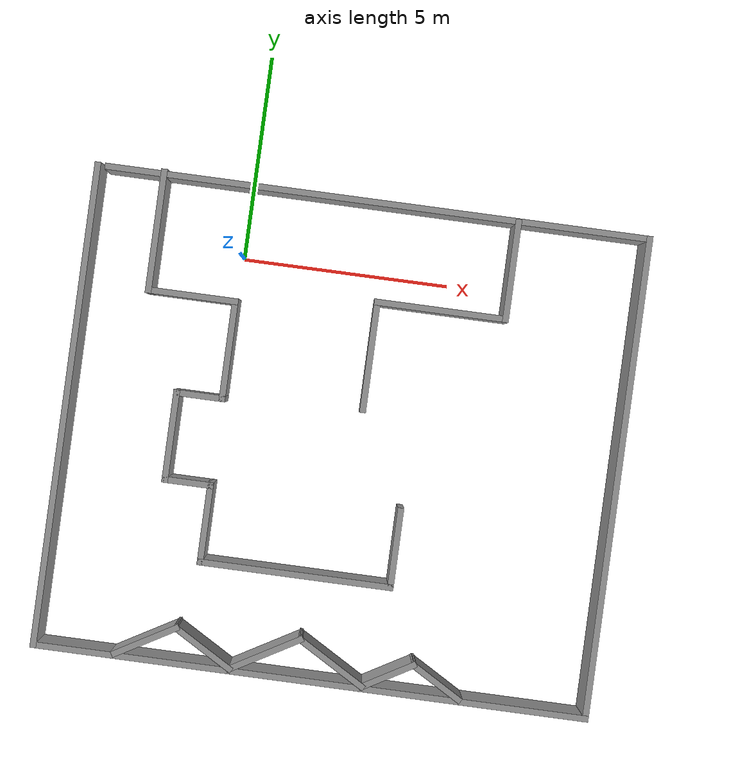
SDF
<?xml version='1.0'?>
<sdf version='1.7'>
  <model name='walls'>
    <pose>2.94182 -4.0688 0 0 -0 0</pose>
    <link name='Wall_11'>
      <collision name='Wall_11_Collision'>
        <geometry>
          <box>
            <size>3 0.15 2.5</size>
          </box>
        </geometry>
        <pose>0 0 1.25 0 -0 0</pose>
      </collision>
      <visual name='Wall_11_Visual'>
        <pose>0 0 1.25 0 -0 0</pose>
        <geometry>
          <box>
            <size>3 0.15 2.5</size>
          </box>
        </geometry>
        <material>
          <script>
            <uri>file://media/materials/scripts/gazebo.material</uri>
            <name>Gazebo/Grey</name>
          </script>
          <ambient>1 1 1 1</ambient>
        </material>
        <meta>
          <layer>0</layer>
        </meta>
      </visual>
      <pose>-5.07342 4.39742 0 0 -0 -1.5708</pose>
    </link>
    <link name='Wall_12'>
      <collision name='Wall_12_Collision'>
        <geometry>
          <box>
            <size>2.25 0.15 2.5</size>
          </box>
        </geometry>
        <pose>0 0 1.25 0 -0 0</pose>
      </collision>
      <visual name='Wall_12_Visual'>
        <pose>0 0 1.25 0 -0 0</pose>
        <geometry>
          <box>
            <size>2.25 0.15 2.5</size>
          </box>
        </geometry>
        <material>
          <script>
            <uri>file://media/materials/scripts/gazebo.material</uri>
            <name>Gazebo/Grey</name>
          </script>
          <ambient>1 1 1 1</ambient>
        </material>
        <meta>
          <layer>0</layer>
        </meta>
      </visual>
      <pose>-4.02342 2.97242 0 0 -0 0</pose>
    </link>
    <link name='Wall_13'>
      <collision name='Wall_13_Collision'>
        <geometry>
          <box>
            <size>2.5 0.15 2.5</size>
          </box>
        </geometry>
        <pose>0 0 1.25 0 -0 0</pose>
      </collision>
      <visual name='Wall_13_Visual'>
        <pose>0 0 1.25 0 -0 0</pose>
        <geometry>
          <box>
            <size>2.5 0.15 2.5</size>
          </box>
        </geometry>
        <material>
          <script>
            <uri>file://media/materials/scripts/gazebo.material</uri>
            <name>Gazebo/Grey</name>
          </script>
          <ambient>1 1 1 1</ambient>
        </material>
        <meta>
          <layer>0</layer>
        </meta>
      </visual>
      <pose>-2.97342 1.79742 0 0 -0 -1.5708</pose>
    </link>
    <link name='Wall_14'>
      <collision name='Wall_14_Collision'>
        <geometry>
          <box>
            <size>1.25 0.15 2.5</size>
          </box>
        </geometry>
        <pose>0 0 1.25 0 -0 0</pose>
      </collision>
      <visual name='Wall_14_Visual'>
        <pose>0 0 1.25 0 -0 0</pose>
        <geometry>
          <box>
            <size>1.25 0.15 2.5</size>
          </box>
        </geometry>
        <material>
          <script>
            <uri>file://media/materials/scripts/gazebo.material</uri>
            <name>Gazebo/Grey</name>
          </script>
          <ambient>1 1 1 1</ambient>
        </material>
        <meta>
          <layer>0</layer>
        </meta>
      </visual>
      <pose>-3.52342 0.622418 0 0 -0 3.14159</pose>
    </link>
    <link name='Wall_15'>
      <collision name='Wall_15_Collision'>
        <geometry>
          <box>
            <size>2.25 0.15 2.5</size>
          </box>
        </geometry>
        <pose>0 0 1.25 0 -0 0</pose>
      </collision>
      <visual name='Wall_15_Visual'>
        <pose>0 0 1.25 0 -0 0</pose>
        <geometry>
          <box>
            <size>2.25 0.15 2.5</size>
          </box>
        </geometry>
        <material>
          <script>
            <uri>file://media/materials/scripts/gazebo.material</uri>
            <name>Gazebo/Grey</name>
          </script>
          <ambient>1 1 1 1</ambient>
        </material>
        <meta>
          <layer>0</layer>
        </meta>
      </visual>
      <pose>-4.07342 -0.427582 0 0 -0 -1.5708</pose>
    </link>
    <link name='Wall_16'>
      <collision name='Wall_16_Collision'>
        <geometry>
          <box>
            <size>1.25 0.15 2.5</size>
          </box>
        </geometry>
        <pose>0 0 1.25 0 -0 0</pose>
      </collision>
      <visual name='Wall_16_Visual'>
        <pose>0 0 1.25 0 -0 0</pose>
        <geometry>
          <box>
            <size>1.25 0.15 2.5</size>
          </box>
        </geometry>
        <material>
          <script>
            <uri>file://media/materials/scripts/gazebo.material</uri>
            <name>Gazebo/Grey</name>
          </script>
          <ambient>1 1 1 1</ambient>
        </material>
        <meta>
          <layer>0</layer>
        </meta>
      </visual>
      <pose>-3.52342 -1.47758 0 0 -0 0</pose>
    </link>
    <link name='Wall_17'>
      <collision name='Wall_17_Collision'>
        <geometry>
          <box>
            <size>2 0.15 2.5</size>
          </box>
        </geometry>
        <pose>0 0 1.25 0 -0 0</pose>
      </collision>
      <visual name='Wall_17_Visual'>
        <pose>0 0 1.25 0 -0 0</pose>
        <geometry>
          <box>
            <size>2 0.15 2.5</size>
          </box>
        </geometry>
        <material>
          <script>
            <uri>file://media/materials/scripts/gazebo.material</uri>
            <name>Gazebo/Grey</name>
          </script>
          <ambient>1 1 1 1</ambient>
        </material>
        <meta>
          <layer>0</layer>
        </meta>
      </visual>
      <pose>-2.97342 -2.40258 0 0 -0 -1.5708</pose>
    </link>
    <link name='Wall_18'>
      <collision name='Wall_18_Collision'>
        <geometry>
          <box>
            <size>4.75 0.15 2.5</size>
          </box>
        </geometry>
        <pose>0 0 1.25 0 -0 0</pose>
      </collision>
      <visual name='Wall_18_Visual'>
        <pose>0 0 1.25 0 -0 0</pose>
        <geometry>
          <box>
            <size>4.75 0.15 2.5</size>
          </box>
        </geometry>
        <material>
          <script>
            <uri>file://media/materials/scripts/gazebo.material</uri>
            <name>Gazebo/Grey</name>
          </script>
          <ambient>1 1 1 1</ambient>
        </material>
        <meta>
          <layer>0</layer>
        </meta>
      </visual>
      <pose>-0.673416 -3.32758 0 0 -0 0</pose>
    </link>
    <link name='Wall_19'>
      <collision name='Wall_19_Collision'>
        <geometry>
          <box>
            <size>2 0.15 2.5</size>
          </box>
        </geometry>
        <pose>0 0 1.25 0 -0 0</pose>
      </collision>
      <visual name='Wall_19_Visual'>
        <pose>0 0 1.25 0 -0 0</pose>
        <geometry>
          <box>
            <size>2 0.15 2.5</size>
          </box>
        </geometry>
        <material>
          <script>
            <uri>file://media/materials/scripts/gazebo.material</uri>
            <name>Gazebo/Grey</name>
          </script>
          <ambient>1 1 1 1</ambient>
        </material>
        <meta>
          <layer>0</layer>
        </meta>
      </visual>
      <pose>1.62658 -2.40258 0 0 -0 1.5708</pose>
    </link>
    <link name='Wall_23'>
      <collision name='Wall_23_Collision'>
        <geometry>
          <box>
            <size>2.5 0.15 2.5</size>
          </box>
        </geometry>
        <pose>0 0 1.25 0 -0 0</pose>
      </collision>
      <visual name='Wall_23_Visual'>
        <pose>0 0 1.25 0 -0 0</pose>
        <geometry>
          <box>
            <size>2.5 0.15 2.5</size>
          </box>
        </geometry>
        <material>
          <script>
            <uri>file://media/materials/scripts/gazebo.material</uri>
            <name>Gazebo/Grey</name>
          </script>
          <ambient>1 1 1 1</ambient>
        </material>
        <meta>
          <layer>0</layer>
        </meta>
      </visual>
      <pose>3.50717 4.58824 0 0 -0 -1.5708</pose>
    </link>
    <link name='Wall_24'>
      <collision name='Wall_24_Collision'>
        <geometry>
          <box>
            <size>3.25 0.15 2.5</size>
          </box>
        </geometry>
        <pose>0 0 1.25 0 -0 0</pose>
      </collision>
      <visual name='Wall_24_Visual'>
        <pose>0 0 1.25 0 -0 0</pose>
        <geometry>
          <box>
            <size>3.25 0.15 2.5</size>
          </box>
        </geometry>
        <material>
          <script>
            <uri>file://media/materials/scripts/gazebo.material</uri>
            <name>Gazebo/Grey</name>
          </script>
          <ambient>1 1 1 1</ambient>
        </material>
        <meta>
          <layer>0</layer>
        </meta>
      </visual>
      <pose>1.95717 3.41324 0 0 -0 3.14159</pose>
    </link>
    <link name='Wall_25'>
      <collision name='Wall_25_Collision'>
        <geometry>
          <box>
            <size>2.75 0.15 2.5</size>
          </box>
        </geometry>
        <pose>0 0 1.25 0 -0 0</pose>
      </collision>
      <visual name='Wall_25_Visual'>
        <pose>0 0 1.25 0 -0 0</pose>
        <geometry>
          <box>
            <size>2.75 0.15 2.5</size>
          </box>
        </geometry>
        <material>
          <script>
            <uri>file://media/materials/scripts/gazebo.material</uri>
            <name>Gazebo/Grey</name>
          </script>
          <ambient>1 1 1 1</ambient>
        </material>
        <meta>
          <layer>0</layer>
        </meta>
      </visual>
      <pose>0.40717 2.11324 0 0 -0 -1.5708</pose>
    </link>
    <link name='Wall_29'>
      <collision name='Wall_29_Collision'>
        <geometry>
          <box>
            <size>1.75 0.15 2.5</size>
          </box>
        </geometry>
        <pose>0 0 1.25 0 -0 0</pose>
      </collision>
      <visual name='Wall_29_Visual'>
        <pose>0 0 1.25 0 -0 0</pose>
        <geometry>
          <box>
            <size>1.75 0.15 2.5</size>
          </box>
        </geometry>
        <material>
          <script>
            <uri>file://media/materials/scripts/gazebo.material</uri>
            <name>Gazebo/Grey</name>
          </script>
          <ambient>1 1 1 1</ambient>
        </material>
        <meta>
          <layer>0</layer>
        </meta>
      </visual>
      <pose>-4.02554 -5.37617 0 0 -0 0.523599</pose>
    </link>
    <link name='Wall_30'>
      <collision name='Wall_30_Collision'>
        <geometry>
          <box>
            <size>1.75 0.15 2.5</size>
          </box>
        </geometry>
        <pose>0 0 1.25 0 -0 0</pose>
      </collision>
      <visual name='Wall_30_Visual'>
        <pose>0 0 1.25 0 -0 0</pose>
        <geometry>
          <box>
            <size>1.75 0.15 2.5</size>
          </box>
        </geometry>
        <material>
          <script>
            <uri>file://media/materials/scripts/gazebo.material</uri>
            <name>Gazebo/Grey</name>
          </script>
          <ambient>1 1 1 1</ambient>
        </material>
        <meta>
          <layer>0</layer>
        </meta>
      </visual>
      <pose>-2.6399 -5.37617 0 0 -0 -0.523599</pose>
    </link>
    <link name='Wall_31'>
      <collision name='Wall_31_Collision'>
        <geometry>
          <box>
            <size>2 0.15 2.5</size>
          </box>
        </geometry>
        <pose>0 0 1.25 0 -0 0</pose>
      </collision>
      <visual name='Wall_31_Visual'>
        <pose>0 0 1.25 0 -0 0</pose>
        <geometry>
          <box>
            <size>2 0.15 2.5</size>
          </box>
        </geometry>
        <material>
          <script>
            <uri>file://media/materials/scripts/gazebo.material</uri>
            <name>Gazebo/Grey</name>
          </script>
          <ambient>1 1 1 1</ambient>
        </material>
        <meta>
          <layer>0</layer>
        </meta>
      </visual>
      <pose>-1.146 -5.31367 0 0 -0 0.523599</pose>
    </link>
    <link name='Wall_32'>
      <collision name='Wall_32_Collision'>
        <geometry>
          <box>
            <size>2 0.15 2.5</size>
          </box>
        </geometry>
        <pose>0 0 1.25 0 -0 0</pose>
      </collision>
      <visual name='Wall_32_Visual'>
        <pose>0 0 1.25 0 -0 0</pose>
        <geometry>
          <box>
            <size>2 0.15 2.5</size>
          </box>
        </geometry>
        <material>
          <script>
            <uri>file://media/materials/scripts/gazebo.material</uri>
            <name>Gazebo/Grey</name>
          </script>
          <ambient>1 1 1 1</ambient>
        </material>
        <meta>
          <layer>0</layer>
        </meta>
      </visual>
      <pose>0.456144 -5.31367 0 0 -0 -0.523599</pose>
    </link>
    <link name='Wall_33'>
      <collision name='Wall_33_Collision'>
        <geometry>
          <box>
            <size>1.5 0.15 2.5</size>
          </box>
        </geometry>
        <pose>0 0 1.25 0 -0 0</pose>
      </collision>
      <visual name='Wall_33_Visual'>
        <pose>0 0 1.25 0 -0 0</pose>
        <geometry>
          <box>
            <size>1.5 0.15 2.5</size>
          </box>
        </geometry>
        <material>
          <script>
            <uri>file://media/materials/scripts/gazebo.material</uri>
            <name>Gazebo/Grey</name>
          </script>
          <ambient>1 1 1 1</ambient>
        </material>
        <meta>
          <layer>0</layer>
        </meta>
      </visual>
      <pose>1.84179 -5.43867 0 0 -0 0.523599</pose>
    </link>
    <link name='Wall_34'>
      <collision name='Wall_34_Collision'>
        <geometry>
          <box>
            <size>1.5 0.15 2.5</size>
          </box>
        </geometry>
        <pose>0 0 1.25 0 -0 0</pose>
      </collision>
      <visual name='Wall_34_Visual'>
        <pose>0 0 1.25 0 -0 0</pose>
        <geometry>
          <box>
            <size>1.5 0.15 2.5</size>
          </box>
        </geometry>
        <material>
          <script>
            <uri>file://media/materials/scripts/gazebo.material</uri>
            <name>Gazebo/Grey</name>
          </script>
          <ambient>1 1 1 1</ambient>
        </material>
        <meta>
          <layer>0</layer>
        </meta>
      </visual>
      <pose>3.01092 -5.43867 0 0 -0 -0.523599</pose>
    </link>
    <link name='Wall_6'>
      <collision name='Wall_6_Collision'>
        <geometry>
          <box>
            <size>11.75 0.15 2.5</size>
          </box>
        </geometry>
        <pose>0 0 1.25 0 -0 0</pose>
      </collision>
      <visual name='Wall_6_Visual'>
        <pose>0 0 1.25 0 -0 0</pose>
        <geometry>
          <box>
            <size>11.75 0.15 2.5</size>
          </box>
        </geometry>
        <material>
          <script>
            <uri>file://media/materials/scripts/gazebo.material</uri>
            <name>Gazebo/Grey</name>
          </script>
          <ambient>1 1 1 1</ambient>
        </material>
        <meta>
          <layer>0</layer>
        </meta>
      </visual>
      <pose>-6.675 -0.022417 0 0 -0 -1.5708</pose>
    </link>
    <link name='Wall_7'>
      <collision name='Wall_7_Collision'>
        <geometry>
          <box>
            <size>13.5 0.15 2.5</size>
          </box>
        </geometry>
        <pose>0 0 1.25 0 -0 0</pose>
      </collision>
      <visual name='Wall_7_Visual'>
        <pose>0 0 1.25 0 -0 0</pose>
        <geometry>
          <box>
            <size>13.5 0.15 2.5</size>
          </box>
        </geometry>
        <material>
          <script>
            <uri>file://media/materials/scripts/gazebo.material</uri>
            <name>Gazebo/Grey</name>
          </script>
          <ambient>1 1 1 1</ambient>
        </material>
        <meta>
          <layer>0</layer>
        </meta>
      </visual>
      <pose>0 -5.82242 0 0 -0 0</pose>
    </link>
    <link name='Wall_8'>
      <collision name='Wall_8_Collision'>
        <geometry>
          <box>
            <size>11.75 0.15 2.5</size>
          </box>
        </geometry>
        <pose>0 0 1.25 0 -0 0</pose>
      </collision>
      <visual name='Wall_8_Visual'>
        <pose>0 0 1.25 0 -0 0</pose>
        <geometry>
          <box>
            <size>11.75 0.15 2.5</size>
          </box>
        </geometry>
        <material>
          <script>
            <uri>file://media/materials/scripts/gazebo.material</uri>
            <name>Gazebo/Grey</name>
          </script>
          <ambient>1 1 1 1</ambient>
        </material>
        <meta>
          <layer>0</layer>
        </meta>
      </visual>
      <pose>6.675 -0.022417 0 0 -0 1.5708</pose>
    </link>
    <link name='Wall_9'>
      <collision name='Wall_9_Collision'>
        <geometry>
          <box>
            <size>13.25 0.15 2.5</size>
          </box>
        </geometry>
        <pose>0 0 1.25 0 -0 0</pose>
      </collision>
      <visual name='Wall_9_Visual'>
        <pose>0 0 1.25 0 -0 0</pose>
        <geometry>
          <box>
            <size>13.25 0.15 2.5</size>
          </box>
        </geometry>
        <material>
          <script>
            <uri>file://media/materials/scripts/gazebo.material</uri>
            <name>Gazebo/Grey</name>
          </script>
          <ambient>1 1 1 1</ambient>
        </material>
        <meta>
          <layer>0</layer>
        </meta>
      </visual>
      <pose>0.125 5.77758 0 0 -0 3.14159</pose>
    </link>
    <static>1</static>
  </model>
</sdf>
